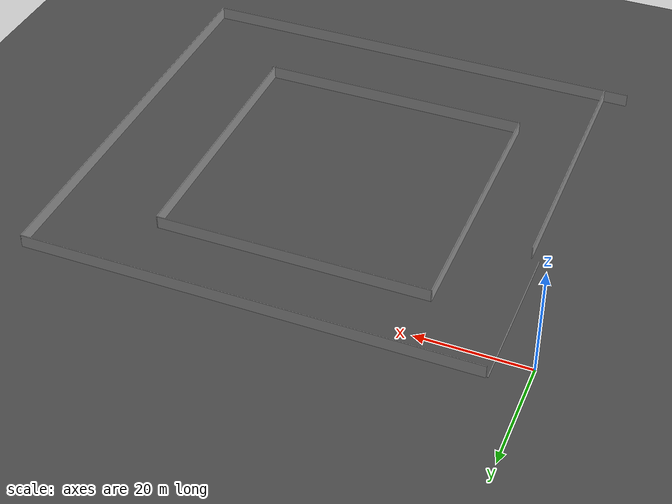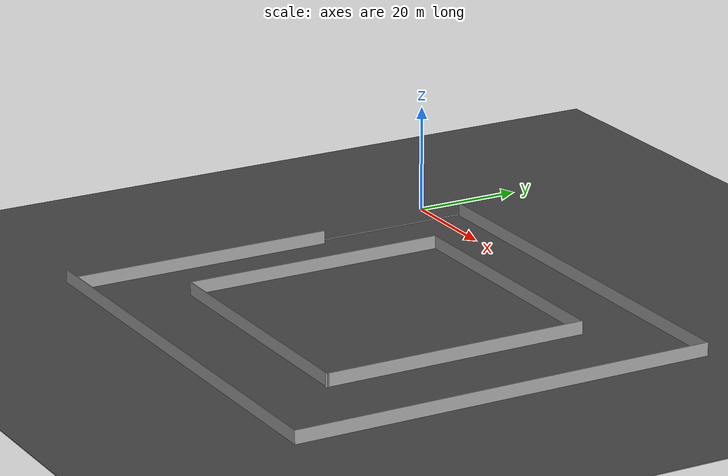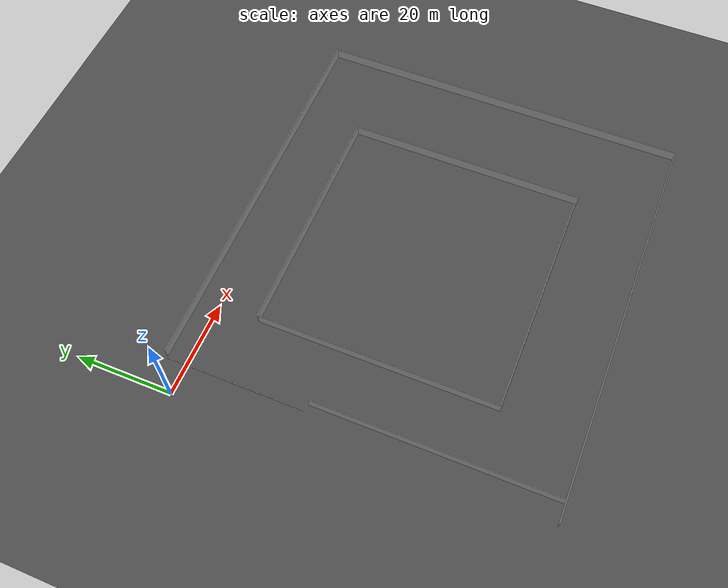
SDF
<sdf version="1.6">
 <world name="default">
  <light name="sun" type="directional">
   <pose>0 0 10 0 -0 0</pose>
   <diffuse>0.8 0.8 0.8 1</diffuse>
   <specular>0.2 0.2 0.2 1</specular>
   <attenuation>
    <range>1000</range>
    <constant>0.9</constant>
    <linear>0.01</linear>
    <quadratic>0.001</quadratic>
   </attenuation>
   <direction>-0.5 0.1 -0.9</direction>
  </light>
  <physics name="default_physics" default="0" type="ode">
   <max_step_size>0.004</max_step_size>
   <real_time_factor>1</real_time_factor>
   <real_time_update_rate>250</real_time_update_rate>
   <ode>
    <solver>
     <type>quick</type>
     <iters>10</iters>
     <sor>1.3</sor>
     <use_dynamic_moi_rescaling>0</use_dynamic_moi_rescaling>
    </solver>
    <constraints>
     <cfm>0</cfm>
     <erp>0.2</erp>
     <contact_max_correcting_vel>100</contact_max_correcting_vel>
     <contact_surface_layer>0.001</contact_surface_layer>
    </constraints>
   </ode>
  </physics>
  <model name="ground_plane">
   <static>1</static>
   <link name="link">
    <collision name="collision">
     <geometry><plane><normal>0 0 1</normal><size>1000 1000</size></plane></geometry>
     <surface>
      <contact><collide_bitmask>65535</collide_bitmask></contact>
      <friction><ode><mu>100</mu><mu2>50</mu2></ode></friction>
     </surface>
    </collision>
    <visual name="visual">
     <cast_shadows>0</cast_shadows>
     <geometry><plane><normal>0 0 1</normal><size>1000 1000</size></plane></geometry>
     <material>
      <script><uri>file://media/materials/scripts/gazebo.material</uri><name>Gazebo/Grey</name></script>
     </material>
    </visual>
   </link>
  </model>
  <model name="asphalt_plane">
   <static>1</static>
   <link name="link">
    <collision name="collision"><geometry><box><size>500 500 0.1</size></box></geometry></collision>
    <visual name="visual">
     <cast_shadows>0</cast_shadows>
     <geometry><box><size>500 500 0.1</size></box></geometry>
     <material>
      <script>
       <uri>model://asphalt_plane/materials/scripts</uri>
       <uri>model://asphalt_plane/materials/textures</uri>
       <name>vrc/asphalt</name>
      </script>
     </material>
    </visual>
   </link>
  </model>
  <atmosphere type="adiabatic"/>
  <scene><ambient>0.4 0.4 0.4 1</ambient><background>0.7 0.7 0.7 1</background><shadows>1</shadows></scene>
  <spherical_coordinates>
   <surface_model>EARTH_WGS84</surface_model>
   <latitude_deg>0</latitude_deg>
   <longitude_deg>0</longitude_deg>
   <elevation>0</elevation>
   <heading_deg>0</heading_deg>
  </spherical_coordinates>
  <light name="user_point_light_0" type="point">
   <pose>6.97242 -0.875046 1 0 -0 0</pose>
   <diffuse>0.5 0.5 0.5 1</diffuse>
   <specular>0.1 0.1 0.1 1</specular>
   <attenuation>
    <range>20</range>
    <constant>0.5</constant>
    <linear>0.01</linear>
    <quadratic>0.001</quadratic>
   </attenuation>
   <cast_shadows>0</cast_shadows>
   <direction>0 0 -1</direction>
  </light>
  <gravity>0 0 -9.8</gravity>
  <magnetic_field>6e-06 2.3e-05 -4.2e-05</magnetic_field>
  <light name="user_point_light_0_clone" type="point">
   <pose>12.0757 -2.16521 1.5 0 -0 0</pose>
   <diffuse>0.5 0.5 0.5 1</diffuse>
   <specular>0.1 0.1 0.1 1</specular>
   <direction>0 0 -1</direction>
   <attenuation>
    <range>20</range>
    <constant>0.5</constant>
    <linear>0.01</linear>
    <quadratic>0.001</quadratic>
   </attenuation>
   <cast_shadows>0</cast_shadows>
  </light>
  <model name="stop_mz2">
   <pose>46 -35 0 0 -0 0</pose>
   <link name="Wall_13">
    <collision name="Wall_13_Collision">
     <geometry><box><size>50 0.15 2.5</size></box></geometry>
     <pose>0 0 1.25 0 -0 0</pose>
    </collision>
    <visual name="Wall_13_Visual">
     <pose>0 0 1.25 0 -0 0</pose>
     <geometry><box><size>50 0.15 2.5</size></box></geometry>
     <material>
      <script><uri>file://media/materials/scripts/gazebo.material</uri><name>Gazebo/Grey</name></script>
      <ambient>1 1 1 1</ambient>
     </material>
     <meta><layer>0</layer></meta>
    </visual>
    <pose>-1.20222 26.4119 0 0 -0 0</pose>
   </link>
   <link name="Wall_15">
    <collision name="Wall_15_Collision">
     <geometry><box><size>50 0.15 2.5</size></box></geometry>
     <pose>0 0 1.25 0 -0 0</pose>
    </collision>
    <visual name="Wall_15_Visual">
     <pose>0 0 1.25 0 -0 0</pose>
     <geometry><box><size>50 0.15 2.5</size></box></geometry>
     <material>
      <script><uri>file://media/materials/scripts/gazebo.material</uri><name>Gazebo/Grey</name></script>
      <ambient>1 1 1 1</ambient>
     </material>
     <meta><layer>0</layer></meta>
    </visual>
    <pose>23.7228 1.48694 0 0 -0 -1.5708</pose>
   </link>
   <link name="Wall_17">
    <collision name="Wall_17_Collision">
     <geometry><box><size>49.75 0.15 2.5</size></box></geometry>
     <pose>0 0 1.25 0 -0 0</pose>
    </collision>
    <visual name="Wall_17_Visual">
     <pose>0 0 1.25 0 -0 0</pose>
     <geometry><box><size>49.75 0.15 2.5</size></box></geometry>
     <material>
      <script><uri>file://media/materials/scripts/gazebo.material</uri><name>Gazebo/Grey</name></script>
      <ambient>1 1 1 1</ambient>
     </material>
     <meta><layer>0</layer></meta>
    </visual>
    <pose>-26.1272 1.61194 0 0 -0 -1.5708</pose>
   </link>
   <link name="Wall_18">
    <collision name="Wall_18_Collision">
     <geometry><box><size>50.5 0.15 2.5</size></box></geometry>
     <pose>0 0 1.25 0 -0 0</pose>
    </collision>
    <visual name="Wall_18_Visual">
     <pose>0 0 1.25 0 -0 0</pose>
     <geometry><box><size>50.5 0.15 2.5</size></box></geometry>
     <material>
      <script><uri>file://media/materials/scripts/gazebo.material</uri><name>Gazebo/Grey</name></script>
      <ambient>1 1 1 1</ambient>
     </material>
     <meta><layer>0</layer></meta>
    </visual>
    <pose>-0.952219 -23.1881 0 0 -0 0</pose>
   </link>
   <link name="Wall_20">
    <collision name="Wall_20_Collision">
     <geometry><box><size>82.25 0.15 2.5</size></box></geometry>
     <pose>0 0 1.25 0 -0 0</pose>
    </collision>
    <visual name="Wall_20_Visual">
     <pose>0 0 1.25 0 -0 0</pose>
     <geometry><box><size>82.25 0.15 2.5</size></box></geometry>
     <material>
      <script><uri>file://media/materials/scripts/gazebo.material</uri><name>Gazebo/Grey</name></script>
      <ambient>1 1 1 1</ambient>
     </material>
     <meta><layer>0</layer></meta>
    </visual>
    <pose>1.62456 39.3827 0 0 -0 0</pose>
   </link>
   <link name="Wall_21">
    <collision name="Wall_21_Collision">
     <geometry><box><size>78.9154 0.15 2.5</size></box></geometry>
     <pose>0 0 1.25 0 -0 0</pose>
    </collision>
    <visual name="Wall_21_Visual">
     <pose>0 0 1.25 0 -0 0</pose>
     <geometry><box><size>78.9154 0.15 2.5</size></box></geometry>
     <material>
      <script><uri>file://media/materials/scripts/gazebo.material</uri><name>Gazebo/Grey</name></script>
      <ambient>1 1 1 1</ambient>
     </material>
     <meta><layer>0</layer></meta>
    </visual>
    <pose>42.6748 0 0 0 -0 -1.57079</pose>
   </link>
   <link name="Wall_22">
    <collision name="Wall_22_Collision">
     <geometry><box><size>85.5 0.15 2.5</size></box></geometry>
     <pose>0 0 1.25 0 -0 0</pose>
    </collision>
    <visual name="Wall_22_Visual">
     <pose>0 0 1.25 0 -0 0</pose>
     <geometry><box><size>85.5 0.15 2.5</size></box></geometry>
     <material>
      <script><uri>file://media/materials/scripts/gazebo.material</uri><name>Gazebo/Grey</name></script>
      <ambient>1 1 1 1</ambient>
     </material>
     <meta><layer>0</layer></meta>
    </visual>
    <pose>0 -39.3827 0 0 -0 3.14159</pose>
   </link>
   <link name="Wall_25">
    <collision name="Wall_25_Collision">
     <geometry><box><size>28.75 0.15 0.2</size></box></geometry>
     <pose>0 0 0.1 0 -0 0</pose>
    </collision>
    <visual name="Wall_25_Visual">
     <pose>0 0 0.1 0 -0 0</pose>
     <geometry><box><size>28.75 0.15 0.2</size></box></geometry>
     <material>
      <script><uri>file://media/materials/scripts/gazebo.material</uri><name>Gazebo/Grey</name></script>
      <ambient>1 1 1 1</ambient>
     </material>
     <meta><layer>0</layer></meta>
    </visual>
    <pose>-39.7784 24.9117 0 0 -0 -1.5708</pose>
   </link>
   <link name="Wall_27">
    <collision name="Wall_27_Collision">
     <geometry><box><size>49.5 0.15 2.5</size></box></geometry>
     <pose>0 0 1.25 0 -0 0</pose>
    </collision>
    <visual name="Wall_27_Visual">
     <pose>0 0 1.25 0 -0 0</pose>
     <geometry><box><size>49.5 0.15 2.5</size></box></geometry>
     <material>
      <script><uri>file://media/materials/scripts/gazebo.material</uri><name>Gazebo/Grey</name></script>
      <ambient>1 1 1 1</ambient>
     </material>
     <meta><layer>0</layer></meta>
    </visual>
    <pose>-38.3311 -14.5904 0 0 -0 1.5708</pose>
   </link>
   <static>1</static>
  </model>
 </world>
</sdf>
